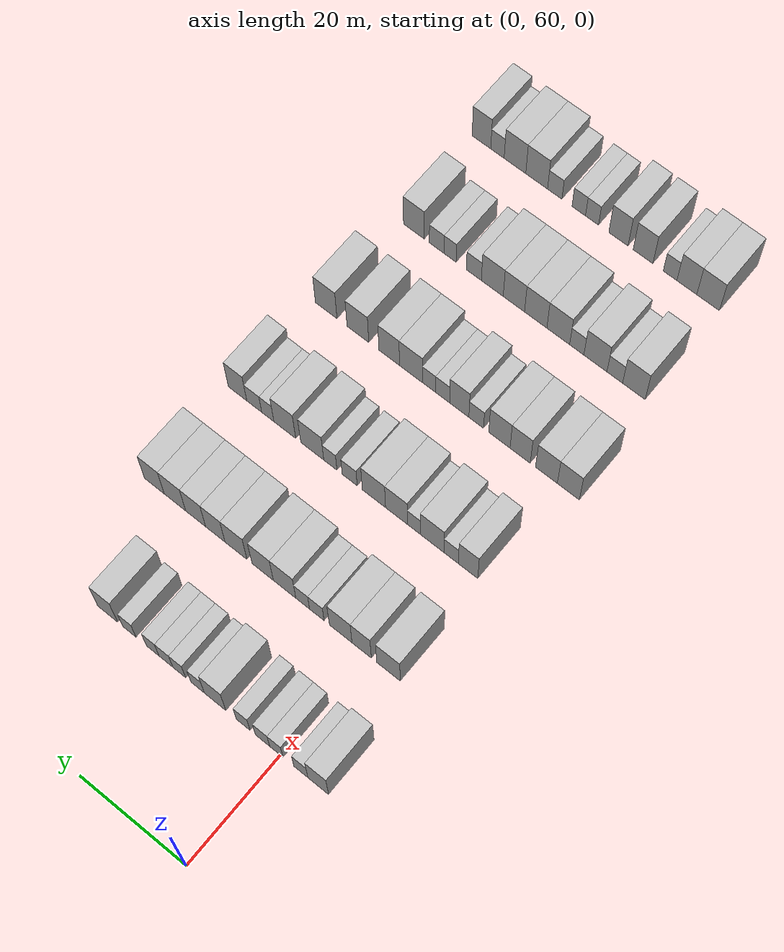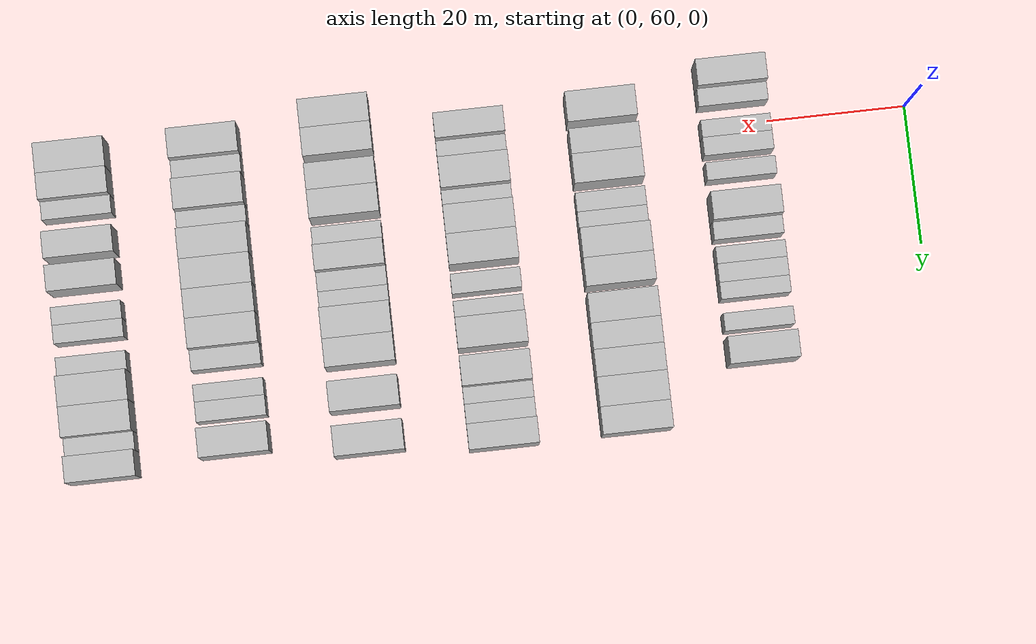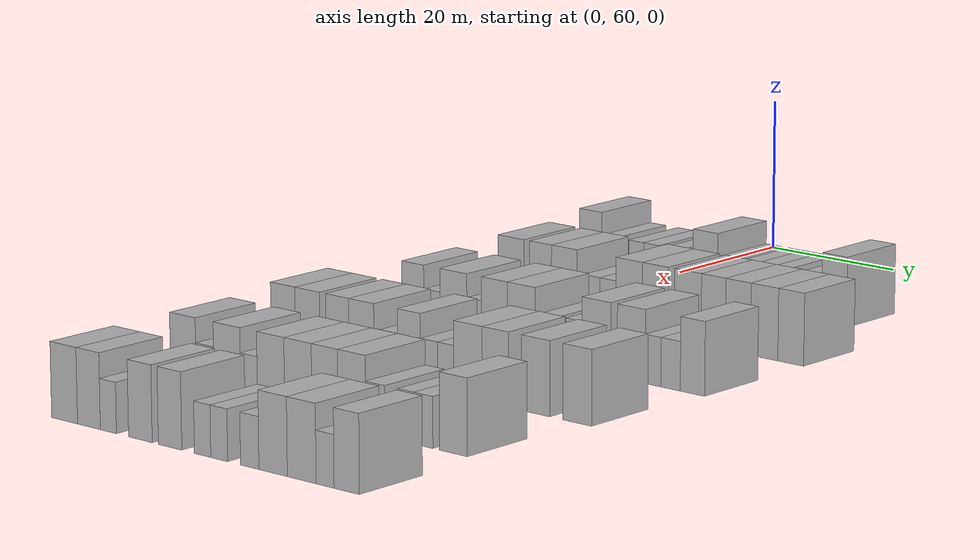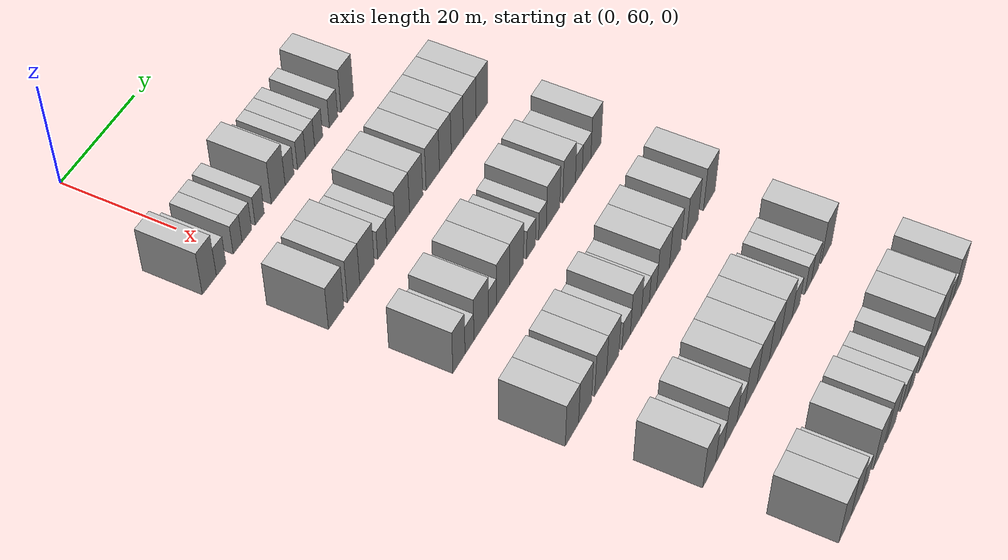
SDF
<sdf version="1.6">
 <world name="default">
  <model name="building_101">
   <static>1</static>
   <pose>25.0000 53.0831 0 0.000000 0.000000 0.000000</pose>
   <link name="link">
    <pose>0 0 4.50 0 0 0</pose>
    <collision name="collision"><geometry><box><size>10.0000 3.7959 9.0000</size></box></geometry></collision>
    <visual name="visual">
     <cast_shadows>0</cast_shadows>
     <geometry><box><size>10.0000 3.7959 9.0000</size></box></geometry>
     <material>
      <script>
       <uri>model://HANNAS_wall/materials/scripts</uri>
       <uri>model://HANNAS_wall/materials/textures</uri>
       <name>vrc/HANNAS_wall</name>
      </script>
     </material>
    </visual>
   </link>
  </model>
  <model name="building_102">
   <static>1</static>
   <pose>25.0000 56.2767 0 0.000000 0.000000 0.000000</pose>
   <link name="link">
    <pose>0 0 3.00 0 0 0</pose>
    <collision name="collision"><geometry><box><size>10.0000 2.5913 6.0000</size></box></geometry></collision>
    <visual name="visual">
     <cast_shadows>0</cast_shadows>
     <geometry><box><size>10.0000 2.5913 6.0000</size></box></geometry>
     <material>
      <script>
       <uri>model://HANNAS_wall/materials/scripts</uri>
       <uri>model://HANNAS_wall/materials/textures</uri>
       <name>vrc/HANNAS_wall</name>
      </script>
     </material>
    </visual>
   </link>
  </model>
  <model name="building_103">
   <static>1</static>
   <pose>25.0000 60.8071 0 0.000000 0.000000 0.000000</pose>
   <link name="link">
    <pose>0 0 3.00 0 0 0</pose>
    <collision name="collision"><geometry><box><size>10.0000 2.4694 6.0000</size></box></geometry></collision>
    <visual name="visual">
     <cast_shadows>0</cast_shadows>
     <geometry><box><size>10.0000 2.4694 6.0000</size></box></geometry>
     <material>
      <script>
       <uri>model://HANNAS_wall/materials/scripts</uri>
       <uri>model://HANNAS_wall/materials/textures</uri>
       <name>vrc/HANNAS_wall</name>
      </script>
     </material>
    </visual>
   </link>
  </model>
  <model name="building_104">
   <static>1</static>
   <pose>25.0000 63.3766 0 0.000000 0.000000 0.000000</pose>
   <link name="link">
    <pose>0 0 3.00 0 0 0</pose>
    <collision name="collision"><geometry><box><size>10.0000 2.6698 6.0000</size></box></geometry></collision>
    <visual name="visual">
     <cast_shadows>0</cast_shadows>
     <geometry><box><size>10.0000 2.6698 6.0000</size></box></geometry>
     <material>
      <script>
       <uri>model://HANNAS_wall/materials/scripts</uri>
       <uri>model://HANNAS_wall/materials/textures</uri>
       <name>vrc/HANNAS_wall</name>
      </script>
     </material>
    </visual>
   </link>
  </model>
  <model name="building_105">
   <static>1</static>
   <pose>25.0000 66.9914 0 0.000000 0.000000 0.000000</pose>
   <link name="link">
    <pose>0 0 3.00 0 0 0</pose>
    <collision name="collision"><geometry><box><size>10.0000 2.5598 6.0000</size></box></geometry></collision>
    <visual name="visual">
     <cast_shadows>0</cast_shadows>
     <geometry><box><size>10.0000 2.5598 6.0000</size></box></geometry>
     <material>
      <script>
       <uri>model://HANNAS_wall/materials/scripts</uri>
       <uri>model://HANNAS_wall/materials/textures</uri>
       <name>vrc/HANNAS_wall</name>
      </script>
     </material>
    </visual>
   </link>
  </model>
  <model name="building_106">
   <static>1</static>
   <pose>25.0000 72.2853 0 0.000000 0.000000 0.000000</pose>
   <link name="link">
    <pose>0 0 4.50 0 0 0</pose>
    <collision name="collision"><geometry><box><size>10.0000 4.0279 9.0000</size></box></geometry></collision>
    <visual name="visual">
     <cast_shadows>0</cast_shadows>
     <geometry><box><size>10.0000 4.0279 9.0000</size></box></geometry>
     <material>
      <script>
       <uri>model://HANNAS_wall/materials/scripts</uri>
       <uri>model://HANNAS_wall/materials/textures</uri>
       <name>vrc/HANNAS_wall</name>
      </script>
     </material>
    </visual>
   </link>
  </model>
  <model name="building_107">
   <static>1</static>
   <pose>25.0000 75.5898 0 0.000000 0.000000 0.000000</pose>
   <link name="link">
    <pose>0 0 3.00 0 0 0</pose>
    <collision name="collision"><geometry><box><size>10.0000 2.5812 6.0000</size></box></geometry></collision>
    <visual name="visual">
     <cast_shadows>0</cast_shadows>
     <geometry><box><size>10.0000 2.5812 6.0000</size></box></geometry>
     <material>
      <script>
       <uri>model://HANNAS_wall/materials/scripts</uri>
       <uri>model://HANNAS_wall/materials/textures</uri>
       <name>vrc/HANNAS_wall</name>
      </script>
     </material>
    </visual>
   </link>
  </model>
  <model name="building_108">
   <static>1</static>
   <pose>25.0000 79.0958 0 0.000000 0.000000 0.000000</pose>
   <link name="link">
    <pose>0 0 3.00 0 0 0</pose>
    <collision name="collision"><geometry><box><size>10.0000 2.4307 6.0000</size></box></geometry></collision>
    <visual name="visual">
     <cast_shadows>0</cast_shadows>
     <geometry><box><size>10.0000 2.4307 6.0000</size></box></geometry>
     <material>
      <script>
       <uri>model://HANNAS_wall/materials/scripts</uri>
       <uri>model://HANNAS_wall/materials/textures</uri>
       <name>vrc/HANNAS_wall</name>
      </script>
     </material>
    </visual>
   </link>
  </model>
  <model name="building_109">
   <static>1</static>
   <pose>25.0000 81.6455 0 0.000000 0.000000 0.000000</pose>
   <link name="link">
    <pose>0 0 3.00 0 0 0</pose>
    <collision name="collision"><geometry><box><size>10.0000 2.6686 6.0000</size></box></geometry></collision>
    <visual name="visual">
     <cast_shadows>0</cast_shadows>
     <geometry><box><size>10.0000 2.6686 6.0000</size></box></geometry>
     <material>
      <script>
       <uri>model://HANNAS_wall/materials/scripts</uri>
       <uri>model://HANNAS_wall/materials/textures</uri>
       <name>vrc/HANNAS_wall</name>
      </script>
     </material>
    </visual>
   </link>
  </model>
  <model name="building_110">
   <static>1</static>
   <pose>25.0000 84.2063 0 0.000000 0.000000 0.000000</pose>
   <link name="link">
    <pose>0 0 3.00 0 0 0</pose>
    <collision name="collision"><geometry><box><size>10.0000 2.4531 6.0000</size></box></geometry></collision>
    <visual name="visual">
     <cast_shadows>0</cast_shadows>
     <geometry><box><size>10.0000 2.4531 6.0000</size></box></geometry>
     <material>
      <script>
       <uri>model://HANNAS_wall/materials/scripts</uri>
       <uri>model://HANNAS_wall/materials/textures</uri>
       <name>vrc/HANNAS_wall</name>
      </script>
     </material>
    </visual>
   </link>
  </model>
  <model name="building_111">
   <static>1</static>
   <pose>25.0000 88.7154 0 0.000000 0.000000 0.000000</pose>
   <link name="link">
    <pose>0 0 3.00 0 0 0</pose>
    <collision name="collision"><geometry><box><size>10.0000 2.5651 6.0000</size></box></geometry></collision>
    <visual name="visual">
     <cast_shadows>0</cast_shadows>
     <geometry><box><size>10.0000 2.5651 6.0000</size></box></geometry>
     <material>
      <script>
       <uri>model://HANNAS_wall/materials/scripts</uri>
       <uri>model://HANNAS_wall/materials/textures</uri>
       <name>vrc/HANNAS_wall</name>
      </script>
     </material>
    </visual>
   </link>
  </model>
  <model name="building_112">
   <static>1</static>
   <pose>25.0000 92.9549 0 0.000000 0.000000 0.000000</pose>
   <link name="link">
    <pose>0 0 4.50 0 0 0</pose>
    <collision name="collision"><geometry><box><size>10.0000 3.9139 9.0000</size></box></geometry></collision>
    <visual name="visual">
     <cast_shadows>0</cast_shadows>
     <geometry><box><size>10.0000 3.9139 9.0000</size></box></geometry>
     <material>
      <script>
       <uri>model://HANNAS_wall/materials/scripts</uri>
       <uri>model://HANNAS_wall/materials/textures</uri>
       <name>vrc/HANNAS_wall</name>
      </script>
     </material>
    </visual>
   </link>
  </model>
  <model name="building_251">
   <static>1</static>
   <pose>44.0000 55.9585 0 0.000000 0.000000 0.000000</pose>
   <link name="link">
    <pose>0 0 4.50 0 0 0</pose>
    <collision name="collision"><geometry><box><size>10.0000 4.3735 9.0000</size></box></geometry></collision>
    <visual name="visual">
     <cast_shadows>0</cast_shadows>
     <geometry><box><size>10.0000 4.3735 9.0000</size></box></geometry>
     <material>
      <script>
       <uri>model://HANNAS_wall/materials/scripts</uri>
       <uri>model://HANNAS_wall/materials/textures</uri>
       <name>vrc/HANNAS_wall</name>
      </script>
     </material>
    </visual>
   </link>
  </model>
  <model name="building_252">
   <static>1</static>
   <pose>44.0000 60.9543 0 0.000000 0.000000 0.000000</pose>
   <link name="link">
    <pose>0 0 4.50 0 0 0</pose>
    <collision name="collision"><geometry><box><size>10.0000 3.6181 9.0000</size></box></geometry></collision>
    <visual name="visual">
     <cast_shadows>0</cast_shadows>
     <geometry><box><size>10.0000 3.6181 9.0000</size></box></geometry>
     <material>
      <script>
       <uri>model://HANNAS_wall/materials/scripts</uri>
       <uri>model://HANNAS_wall/materials/textures</uri>
       <name>vrc/HANNAS_wall</name>
      </script>
     </material>
    </visual>
   </link>
  </model>
  <model name="building_253">
   <static>1</static>
   <pose>44.0000 64.8880 0 0.000000 0.000000 0.000000</pose>
   <link name="link">
    <pose>0 0 4.50 0 0 0</pose>
    <collision name="collision"><geometry><box><size>10.0000 4.2494 9.0000</size></box></geometry></collision>
    <visual name="visual">
     <cast_shadows>0</cast_shadows>
     <geometry><box><size>10.0000 4.2494 9.0000</size></box></geometry>
     <material>
      <script>
       <uri>model://HANNAS_wall/materials/scripts</uri>
       <uri>model://HANNAS_wall/materials/textures</uri>
       <name>vrc/HANNAS_wall</name>
      </script>
     </material>
    </visual>
   </link>
  </model>
  <model name="building_254">
   <static>1</static>
   <pose>44.0000 69.3848 0 0.000000 0.000000 0.000000</pose>
   <link name="link">
    <pose>0 0 3.00 0 0 0</pose>
    <collision name="collision"><geometry><box><size>10.0000 2.7442 6.0000</size></box></geometry></collision>
    <visual name="visual">
     <cast_shadows>0</cast_shadows>
     <geometry><box><size>10.0000 2.7442 6.0000</size></box></geometry>
     <material>
      <script>
       <uri>model://HANNAS_wall/materials/scripts</uri>
       <uri>model://HANNAS_wall/materials/textures</uri>
       <name>vrc/HANNAS_wall</name>
      </script>
     </material>
    </visual>
   </link>
  </model>
  <model name="building_255">
   <static>1</static>
   <pose>44.0000 72.0666 0 0.000000 0.000000 0.000000</pose>
   <link name="link">
    <pose>0 0 3.00 0 0 0</pose>
    <collision name="collision"><geometry><box><size>10.0000 2.6193 6.0000</size></box></geometry></collision>
    <visual name="visual">
     <cast_shadows>0</cast_shadows>
     <geometry><box><size>10.0000 2.6193 6.0000</size></box></geometry>
     <material>
      <script>
       <uri>model://HANNAS_wall/materials/scripts</uri>
       <uri>model://HANNAS_wall/materials/textures</uri>
       <name>vrc/HANNAS_wall</name>
      </script>
     </material>
    </visual>
   </link>
  </model>
  <model name="building_256">
   <static>1</static>
   <pose>44.0000 75.5264 0 0.000000 0.000000 0.000000</pose>
   <link name="link">
    <pose>0 0 4.50 0 0 0</pose>
    <collision name="collision"><geometry><box><size>10.0000 4.3003 9.0000</size></box></geometry></collision>
    <visual name="visual">
     <cast_shadows>0</cast_shadows>
     <geometry><box><size>10.0000 4.3003 9.0000</size></box></geometry>
     <material>
      <script>
       <uri>model://HANNAS_wall/materials/scripts</uri>
       <uri>model://HANNAS_wall/materials/textures</uri>
       <name>vrc/HANNAS_wall</name>
      </script>
     </material>
    </visual>
   </link>
  </model>
  <model name="building_257">
   <static>1</static>
   <pose>44.0000 79.7203 0 0.000000 0.000000 0.000000</pose>
   <link name="link">
    <pose>0 0 4.50 0 0 0</pose>
    <collision name="collision"><geometry><box><size>10.0000 4.0875 9.0000</size></box></geometry></collision>
    <visual name="visual">
     <cast_shadows>0</cast_shadows>
     <geometry><box><size>10.0000 4.0875 9.0000</size></box></geometry>
     <material>
      <script>
       <uri>model://HANNAS_wall/materials/scripts</uri>
       <uri>model://HANNAS_wall/materials/textures</uri>
       <name>vrc/HANNAS_wall</name>
      </script>
     </material>
    </visual>
   </link>
  </model>
  <model name="building_258">
   <static>1</static>
   <pose>44.0000 84.8828 0 0.000000 0.000000 0.000000</pose>
   <link name="link">
    <pose>0 0 4.50 0 0 0</pose>
    <collision name="collision"><geometry><box><size>10.0000 4.2374 9.0000</size></box></geometry></collision>
    <visual name="visual">
     <cast_shadows>0</cast_shadows>
     <geometry><box><size>10.0000 4.2374 9.0000</size></box></geometry>
     <material>
      <script>
       <uri>model://HANNAS_wall/materials/scripts</uri>
       <uri>model://HANNAS_wall/materials/textures</uri>
       <name>vrc/HANNAS_wall</name>
      </script>
     </material>
    </visual>
   </link>
  </model>
  <model name="building_259">
   <static>1</static>
   <pose>44.0000 88.8914 0 0.000000 0.000000 0.000000</pose>
   <link name="link">
    <pose>0 0 4.50 0 0 0</pose>
    <collision name="collision"><geometry><box><size>10.0000 3.7797 9.0000</size></box></geometry></collision>
    <visual name="visual">
     <cast_shadows>0</cast_shadows>
     <geometry><box><size>10.0000 3.7797 9.0000</size></box></geometry>
     <material>
      <script>
       <uri>model://HANNAS_wall/materials/scripts</uri>
       <uri>model://HANNAS_wall/materials/textures</uri>
       <name>vrc/HANNAS_wall</name>
      </script>
     </material>
    </visual>
   </link>
  </model>
  <model name="building_260">
   <static>1</static>
   <pose>44.0000 92.7341 0 0.000000 0.000000 0.000000</pose>
   <link name="link">
    <pose>0 0 4.50 0 0 0</pose>
    <collision name="collision"><geometry><box><size>10.0000 3.9059 9.0000</size></box></geometry></collision>
    <visual name="visual">
     <cast_shadows>0</cast_shadows>
     <geometry><box><size>10.0000 3.9059 9.0000</size></box></geometry>
     <material>
      <script>
       <uri>model://HANNAS_wall/materials/scripts</uri>
       <uri>model://HANNAS_wall/materials/textures</uri>
       <name>vrc/HANNAS_wall</name>
      </script>
     </material>
    </visual>
   </link>
  </model>
  <model name="building_261">
   <static>1</static>
   <pose>44.0000 96.8026 0 0.000000 0.000000 0.000000</pose>
   <link name="link">
    <pose>0 0 4.50 0 0 0</pose>
    <collision name="collision"><geometry><box><size>10.0000 4.2311 9.0000</size></box></geometry></collision>
    <visual name="visual">
     <cast_shadows>0</cast_shadows>
     <geometry><box><size>10.0000 4.2311 9.0000</size></box></geometry>
     <material>
      <script>
       <uri>model://HANNAS_wall/materials/scripts</uri>
       <uri>model://HANNAS_wall/materials/textures</uri>
       <name>vrc/HANNAS_wall</name>
      </script>
     </material>
    </visual>
   </link>
  </model>
  <model name="building_262">
   <static>1</static>
   <pose>44.0000 100.8817 0 0.000000 0.000000 0.000000</pose>
   <link name="link">
    <pose>0 0 4.50 0 0 0</pose>
    <collision name="collision"><geometry><box><size>10.0000 3.9271 9.0000</size></box></geometry></collision>
    <visual name="visual">
     <cast_shadows>0</cast_shadows>
     <geometry><box><size>10.0000 3.9271 9.0000</size></box></geometry>
     <material>
      <script>
       <uri>model://HANNAS_wall/materials/scripts</uri>
       <uri>model://HANNAS_wall/materials/textures</uri>
       <name>vrc/HANNAS_wall</name>
      </script>
     </material>
    </visual>
   </link>
  </model>
  <model name="building_428">
   <static>1</static>
   <pose>63.0000 56.5885 0 0.000000 0.000000 0.000000</pose>
   <link name="link">
    <pose>0 0 4.50 0 0 0</pose>
    <collision name="collision"><geometry><box><size>10.0000 3.6494 9.0000</size></box></geometry></collision>
    <visual name="visual">
     <cast_shadows>0</cast_shadows>
     <geometry><box><size>10.0000 3.6494 9.0000</size></box></geometry>
     <material>
      <script>
       <uri>model://HANNAS_wall/materials/scripts</uri>
       <uri>model://HANNAS_wall/materials/textures</uri>
       <name>vrc/HANNAS_wall</name>
      </script>
     </material>
    </visual>
   </link>
  </model>
  <model name="building_429">
   <static>1</static>
   <pose>63.0000 59.7554 0 0.000000 0.000000 0.000000</pose>
   <link name="link">
    <pose>0 0 3.00 0 0 0</pose>
    <collision name="collision"><geometry><box><size>10.0000 2.6846 6.0000</size></box></geometry></collision>
    <visual name="visual">
     <cast_shadows>0</cast_shadows>
     <geometry><box><size>10.0000 2.6846 6.0000</size></box></geometry>
     <material>
      <script>
       <uri>model://HANNAS_wall/materials/scripts</uri>
       <uri>model://HANNAS_wall/materials/textures</uri>
       <name>vrc/HANNAS_wall</name>
      </script>
     </material>
    </visual>
   </link>
  </model>
  <model name="building_430">
   <static>1</static>
   <pose>63.0000 63.3325 0 0.000000 0.000000 0.000000</pose>
   <link name="link">
    <pose>0 0 4.50 0 0 0</pose>
    <collision name="collision"><geometry><box><size>10.0000 4.4696 9.0000</size></box></geometry></collision>
    <visual name="visual">
     <cast_shadows>0</cast_shadows>
     <geometry><box><size>10.0000 4.4696 9.0000</size></box></geometry>
     <material>
      <script>
       <uri>model://HANNAS_wall/materials/scripts</uri>
       <uri>model://HANNAS_wall/materials/textures</uri>
       <name>vrc/HANNAS_wall</name>
      </script>
     </material>
    </visual>
   </link>
  </model>
  <model name="building_431">
   <static>1</static>
   <pose>63.0000 66.7752 0 0.000000 0.000000 0.000000</pose>
   <link name="link">
    <pose>0 0 3.00 0 0 0</pose>
    <collision name="collision"><geometry><box><size>10.0000 2.4157 6.0000</size></box></geometry></collision>
    <visual name="visual">
     <cast_shadows>0</cast_shadows>
     <geometry><box><size>10.0000 2.4157 6.0000</size></box></geometry>
     <material>
      <script>
       <uri>model://HANNAS_wall/materials/scripts</uri>
       <uri>model://HANNAS_wall/materials/textures</uri>
       <name>vrc/HANNAS_wall</name>
      </script>
     </material>
    </visual>
   </link>
  </model>
  <model name="building_432">
   <static>1</static>
   <pose>63.0000 70.0774 0 0.000000 0.000000 0.000000</pose>
   <link name="link">
    <pose>0 0 4.50 0 0 0</pose>
    <collision name="collision"><geometry><box><size>10.0000 4.1885 9.0000</size></box></geometry></collision>
    <visual name="visual">
     <cast_shadows>0</cast_shadows>
     <geometry><box><size>10.0000 4.1885 9.0000</size></box></geometry>
     <material>
      <script>
       <uri>model://HANNAS_wall/materials/scripts</uri>
       <uri>model://HANNAS_wall/materials/textures</uri>
       <name>vrc/HANNAS_wall</name>
      </script>
     </material>
    </visual>
   </link>
  </model>
  <model name="building_433">
   <static>1</static>
   <pose>63.0000 74.3974 0 0.000000 0.000000 0.000000</pose>
   <link name="link">
    <pose>0 0 4.50 0 0 0</pose>
    <collision name="collision"><geometry><box><size>10.0000 4.4515 9.0000</size></box></geometry></collision>
    <visual name="visual">
     <cast_shadows>0</cast_shadows>
     <geometry><box><size>10.0000 4.4515 9.0000</size></box></geometry>
     <material>
      <script>
       <uri>model://HANNAS_wall/materials/scripts</uri>
       <uri>model://HANNAS_wall/materials/textures</uri>
       <name>vrc/HANNAS_wall</name>
      </script>
     </material>
    </visual>
   </link>
  </model>
  <model name="building_434">
   <static>1</static>
   <pose>63.0000 79.0762 0 0.000000 0.000000 0.000000</pose>
   <link name="link">
    <pose>0 0 3.00 0 0 0</pose>
    <collision name="collision"><geometry><box><size>10.0000 2.9061 6.0000</size></box></geometry></collision>
    <visual name="visual">
     <cast_shadows>0</cast_shadows>
     <geometry><box><size>10.0000 2.9061 6.0000</size></box></geometry>
     <material>
      <script>
       <uri>model://HANNAS_wall/materials/scripts</uri>
       <uri>model://HANNAS_wall/materials/textures</uri>
       <name>vrc/HANNAS_wall</name>
      </script>
     </material>
    </visual>
   </link>
  </model>
  <model name="building_435">
   <static>1</static>
   <pose>63.0000 82.8114 0 0.000000 0.000000 0.000000</pose>
   <link name="link">
    <pose>0 0 3.00 0 0 0</pose>
    <collision name="collision"><geometry><box><size>10.0000 2.5645 6.0000</size></box></geometry></collision>
    <visual name="visual">
     <cast_shadows>0</cast_shadows>
     <geometry><box><size>10.0000 2.5645 6.0000</size></box></geometry>
     <material>
      <script>
       <uri>model://HANNAS_wall/materials/scripts</uri>
       <uri>model://HANNAS_wall/materials/textures</uri>
       <name>vrc/HANNAS_wall</name>
      </script>
     </material>
    </visual>
   </link>
  </model>
  <model name="building_436">
   <static>1</static>
   <pose>63.0000 86.3375 0 0.000000 0.000000 0.000000</pose>
   <link name="link">
    <pose>0 0 4.50 0 0 0</pose>
    <collision name="collision"><geometry><box><size>10.0000 4.4877 9.0000</size></box></geometry></collision>
    <visual name="visual">
     <cast_shadows>0</cast_shadows>
     <geometry><box><size>10.0000 4.4877 9.0000</size></box></geometry>
     <material>
      <script>
       <uri>model://HANNAS_wall/materials/scripts</uri>
       <uri>model://HANNAS_wall/materials/textures</uri>
       <name>vrc/HANNAS_wall</name>
      </script>
     </material>
    </visual>
   </link>
  </model>
  <model name="building_437">
   <static>1</static>
   <pose>63.0000 91.7300 0 0.000000 0.000000 0.000000</pose>
   <link name="link">
    <pose>0 0 4.50 0 0 0</pose>
    <collision name="collision"><geometry><box><size>10.0000 4.2971 9.0000</size></box></geometry></collision>
    <visual name="visual">
     <cast_shadows>0</cast_shadows>
     <geometry><box><size>10.0000 4.2971 9.0000</size></box></geometry>
     <material>
      <script>
       <uri>model://HANNAS_wall/materials/scripts</uri>
       <uri>model://HANNAS_wall/materials/textures</uri>
       <name>vrc/HANNAS_wall</name>
      </script>
     </material>
    </visual>
   </link>
  </model>
  <model name="building_438">
   <static>1</static>
   <pose>63.0000 95.0815 0 0.000000 0.000000 0.000000</pose>
   <link name="link">
    <pose>0 0 3.00 0 0 0</pose>
    <collision name="collision"><geometry><box><size>10.0000 2.4059 6.0000</size></box></geometry></collision>
    <visual name="visual">
     <cast_shadows>0</cast_shadows>
     <geometry><box><size>10.0000 2.4059 6.0000</size></box></geometry>
     <material>
      <script>
       <uri>model://HANNAS_wall/materials/scripts</uri>
       <uri>model://HANNAS_wall/materials/textures</uri>
       <name>vrc/HANNAS_wall</name>
      </script>
     </material>
    </visual>
   </link>
  </model>
  <model name="building_439">
   <static>1</static>
   <pose>63.0000 97.7679 0 0.000000 0.000000 0.000000</pose>
   <link name="link">
    <pose>0 0 3.00 0 0 0</pose>
    <collision name="collision"><geometry><box><size>10.0000 2.9670 6.0000</size></box></geometry></collision>
    <visual name="visual">
     <cast_shadows>0</cast_shadows>
     <geometry><box><size>10.0000 2.9670 6.0000</size></box></geometry>
     <material>
      <script>
       <uri>model://HANNAS_wall/materials/scripts</uri>
       <uri>model://HANNAS_wall/materials/textures</uri>
       <name>vrc/HANNAS_wall</name>
      </script>
     </material>
    </visual>
   </link>
  </model>
  <model name="building_440">
   <static>1</static>
   <pose>63.0000 101.0882 0 0.000000 0.000000 0.000000</pose>
   <link name="link">
    <pose>0 0 4.50 0 0 0</pose>
    <collision name="collision"><geometry><box><size>10.0000 3.6736 9.0000</size></box></geometry></collision>
    <visual name="visual">
     <cast_shadows>0</cast_shadows>
     <geometry><box><size>10.0000 3.6736 9.0000</size></box></geometry>
     <material>
      <script>
       <uri>model://HANNAS_wall/materials/scripts</uri>
       <uri>model://HANNAS_wall/materials/textures</uri>
       <name>vrc/HANNAS_wall</name>
      </script>
     </material>
    </visual>
   </link>
  </model>
  <model name="building_594">
   <static>1</static>
   <pose>82.0000 52.7827 0 0.000000 0.000000 0.000000</pose>
   <link name="link">
    <pose>0 0 4.50 0 0 0</pose>
    <collision name="collision"><geometry><box><size>10.0000 4.1237 9.0000</size></box></geometry></collision>
    <visual name="visual">
     <cast_shadows>0</cast_shadows>
     <geometry><box><size>10.0000 4.1237 9.0000</size></box></geometry>
     <material>
      <script>
       <uri>model://HANNAS_wall/materials/scripts</uri>
       <uri>model://HANNAS_wall/materials/textures</uri>
       <name>vrc/HANNAS_wall</name>
      </script>
     </material>
    </visual>
   </link>
  </model>
  <model name="building_595">
   <static>1</static>
   <pose>82.0000 56.8955 0 0.000000 0.000000 0.000000</pose>
   <link name="link">
    <pose>0 0 4.50 0 0 0</pose>
    <collision name="collision"><geometry><box><size>10.0000 4.1020 9.0000</size></box></geometry></collision>
    <visual name="visual">
     <cast_shadows>0</cast_shadows>
     <geometry><box><size>10.0000 4.1020 9.0000</size></box></geometry>
     <material>
      <script>
       <uri>model://HANNAS_wall/materials/scripts</uri>
       <uri>model://HANNAS_wall/materials/textures</uri>
       <name>vrc/HANNAS_wall</name>
      </script>
     </material>
    </visual>
   </link>
  </model>
  <model name="building_596">
   <static>1</static>
   <pose>82.0000 61.8574 0 0.000000 0.000000 0.000000</pose>
   <link name="link">
    <pose>0 0 4.50 0 0 0</pose>
    <collision name="collision"><geometry><box><size>10.0000 3.8217 9.0000</size></box></geometry></collision>
    <visual name="visual">
     <cast_shadows>0</cast_shadows>
     <geometry><box><size>10.0000 3.8217 9.0000</size></box></geometry>
     <material>
      <script>
       <uri>model://HANNAS_wall/materials/scripts</uri>
       <uri>model://HANNAS_wall/materials/textures</uri>
       <name>vrc/HANNAS_wall</name>
      </script>
     </material>
    </visual>
   </link>
  </model>
  <model name="building_597">
   <static>1</static>
   <pose>82.0000 65.7996 0 0.000000 0.000000 0.000000</pose>
   <link name="link">
    <pose>0 0 4.50 0 0 0</pose>
    <collision name="collision"><geometry><box><size>10.0000 4.0628 9.0000</size></box></geometry></collision>
    <visual name="visual">
     <cast_shadows>0</cast_shadows>
     <geometry><box><size>10.0000 4.0628 9.0000</size></box></geometry>
     <material>
      <script>
       <uri>model://HANNAS_wall/materials/scripts</uri>
       <uri>model://HANNAS_wall/materials/textures</uri>
       <name>vrc/HANNAS_wall</name>
      </script>
     </material>
    </visual>
   </link>
  </model>
  <model name="building_598">
   <static>1</static>
   <pose>82.0000 70.2352 0 0.000000 0.000000 0.000000</pose>
   <link name="link">
    <pose>0 0 3.00 0 0 0</pose>
    <collision name="collision"><geometry><box><size>10.0000 2.8083 6.0000</size></box></geometry></collision>
    <visual name="visual">
     <cast_shadows>0</cast_shadows>
     <geometry><box><size>10.0000 2.8083 6.0000</size></box></geometry>
     <material>
      <script>
       <uri>model://HANNAS_wall/materials/scripts</uri>
       <uri>model://HANNAS_wall/materials/textures</uri>
       <name>vrc/HANNAS_wall</name>
      </script>
     </material>
    </visual>
   </link>
  </model>
  <model name="building_599">
   <static>1</static>
   <pose>82.0000 73.4922 0 0.000000 0.000000 0.000000</pose>
   <link name="link">
    <pose>0 0 4.50 0 0 0</pose>
    <collision name="collision"><geometry><box><size>10.0000 3.7058 9.0000</size></box></geometry></collision>
    <visual name="visual">
     <cast_shadows>0</cast_shadows>
     <geometry><box><size>10.0000 3.7058 9.0000</size></box></geometry>
     <material>
      <script>
       <uri>model://HANNAS_wall/materials/scripts</uri>
       <uri>model://HANNAS_wall/materials/textures</uri>
       <name>vrc/HANNAS_wall</name>
      </script>
     </material>
    </visual>
   </link>
  </model>
  <model name="building_600">
   <static>1</static>
   <pose>82.0000 76.7209 0 0.000000 0.000000 0.000000</pose>
   <link name="link">
    <pose>0 0 3.00 0 0 0</pose>
    <collision name="collision"><geometry><box><size>10.0000 2.7516 6.0000</size></box></geometry></collision>
    <visual name="visual">
     <cast_shadows>0</cast_shadows>
     <geometry><box><size>10.0000 2.7516 6.0000</size></box></geometry>
     <material>
      <script>
       <uri>model://HANNAS_wall/materials/scripts</uri>
       <uri>model://HANNAS_wall/materials/textures</uri>
       <name>vrc/HANNAS_wall</name>
      </script>
     </material>
    </visual>
   </link>
  </model>
  <model name="building_601">
   <static>1</static>
   <pose>82.0000 79.3577 0 0.000000 0.000000 0.000000</pose>
   <link name="link">
    <pose>0 0 3.00 0 0 0</pose>
    <collision name="collision"><geometry><box><size>10.0000 2.5218 6.0000</size></box></geometry></collision>
    <visual name="visual">
     <cast_shadows>0</cast_shadows>
     <geometry><box><size>10.0000 2.5218 6.0000</size></box></geometry>
     <material>
      <script>
       <uri>model://HANNAS_wall/materials/scripts</uri>
       <uri>model://HANNAS_wall/materials/textures</uri>
       <name>vrc/HANNAS_wall</name>
      </script>
     </material>
    </visual>
   </link>
  </model>
  <model name="building_602">
   <static>1</static>
   <pose>82.0000 82.8549 0 0.000000 0.000000 0.000000</pose>
   <link name="link">
    <pose>0 0 4.50 0 0 0</pose>
    <collision name="collision"><geometry><box><size>10.0000 4.4726 9.0000</size></box></geometry></collision>
    <visual name="visual">
     <cast_shadows>0</cast_shadows>
     <geometry><box><size>10.0000 4.4726 9.0000</size></box></geometry>
     <material>
      <script>
       <uri>model://HANNAS_wall/materials/scripts</uri>
       <uri>model://HANNAS_wall/materials/textures</uri>
       <name>vrc/HANNAS_wall</name>
      </script>
     </material>
    </visual>
   </link>
  </model>
  <model name="building_603">
   <static>1</static>
   <pose>82.0000 87.1201 0 0.000000 0.000000 0.000000</pose>
   <link name="link">
    <pose>0 0 4.50 0 0 0</pose>
    <collision name="collision"><geometry><box><size>10.0000 4.0580 9.0000</size></box></geometry></collision>
    <visual name="visual">
     <cast_shadows>0</cast_shadows>
     <geometry><box><size>10.0000 4.0580 9.0000</size></box></geometry>
     <material>
      <script>
       <uri>model://HANNAS_wall/materials/scripts</uri>
       <uri>model://HANNAS_wall/materials/textures</uri>
       <name>vrc/HANNAS_wall</name>
      </script>
     </material>
    </visual>
   </link>
  </model>
  <model name="building_604">
   <static>1</static>
   <pose>82.0000 93.3051 0 0.000000 0.000000 0.000000</pose>
   <link name="link">
    <pose>0 0 4.50 0 0 0</pose>
    <collision name="collision"><geometry><box><size>10.0000 4.3120 9.0000</size></box></geometry></collision>
    <visual name="visual">
     <cast_shadows>0</cast_shadows>
     <geometry><box><size>10.0000 4.3120 9.0000</size></box></geometry>
     <material>
      <script>
       <uri>model://HANNAS_wall/materials/scripts</uri>
       <uri>model://HANNAS_wall/materials/textures</uri>
       <name>vrc/HANNAS_wall</name>
      </script>
     </material>
    </visual>
   </link>
  </model>
  <model name="building_605">
   <static>1</static>
   <pose>82.0000 99.6164 0 0.000000 0.000000 0.000000</pose>
   <link name="link">
    <pose>0 0 4.50 0 0 0</pose>
    <collision name="collision"><geometry><box><size>10.0000 4.3107 9.0000</size></box></geometry></collision>
    <visual name="visual">
     <cast_shadows>0</cast_shadows>
     <geometry><box><size>10.0000 4.3107 9.0000</size></box></geometry>
     <material>
      <script>
       <uri>model://HANNAS_wall/materials/scripts</uri>
       <uri>model://HANNAS_wall/materials/textures</uri>
       <name>vrc/HANNAS_wall</name>
      </script>
     </material>
    </visual>
   </link>
  </model>
  <model name="building_772">
   <static>1</static>
   <pose>101.0000 54.9711 0 0.000000 0.000000 0.000000</pose>
   <link name="link">
    <pose>0 0 4.50 0 0 0</pose>
    <collision name="collision"><geometry><box><size>10.0000 4.2649 9.0000</size></box></geometry></collision>
    <visual name="visual">
     <cast_shadows>0</cast_shadows>
     <geometry><box><size>10.0000 4.2649 9.0000</size></box></geometry>
     <material>
      <script>
       <uri>model://HANNAS_wall/materials/scripts</uri>
       <uri>model://HANNAS_wall/materials/textures</uri>
       <name>vrc/HANNAS_wall</name>
      </script>
     </material>
    </visual>
   </link>
  </model>
  <model name="building_773">
   <static>1</static>
   <pose>101.0000 58.5860 0 0.000000 0.000000 0.000000</pose>
   <link name="link">
    <pose>0 0 3.00 0 0 0</pose>
    <collision name="collision"><geometry><box><size>10.0000 2.9649 6.0000</size></box></geometry></collision>
    <visual name="visual">
     <cast_shadows>0</cast_shadows>
     <geometry><box><size>10.0000 2.9649 6.0000</size></box></geometry>
     <material>
      <script>
       <uri>model://HANNAS_wall/materials/scripts</uri>
       <uri>model://HANNAS_wall/materials/textures</uri>
       <name>vrc/HANNAS_wall</name>
      </script>
     </material>
    </visual>
   </link>
  </model>
  <model name="building_774">
   <static>1</static>
   <pose>101.0000 62.2700 0 0.000000 0.000000 0.000000</pose>
   <link name="link">
    <pose>0 0 4.50 0 0 0</pose>
    <collision name="collision"><geometry><box><size>10.0000 4.4031 9.0000</size></box></geometry></collision>
    <visual name="visual">
     <cast_shadows>0</cast_shadows>
     <geometry><box><size>10.0000 4.4031 9.0000</size></box></geometry>
     <material>
      <script>
       <uri>model://HANNAS_wall/materials/scripts</uri>
       <uri>model://HANNAS_wall/materials/textures</uri>
       <name>vrc/HANNAS_wall</name>
      </script>
     </material>
    </visual>
   </link>
  </model>
  <model name="building_775">
   <static>1</static>
   <pose>101.0000 65.8360 0 0.000000 0.000000 0.000000</pose>
   <link name="link">
    <pose>0 0 3.00 0 0 0</pose>
    <collision name="collision"><geometry><box><size>10.0000 2.7289 6.0000</size></box></geometry></collision>
    <visual name="visual">
     <cast_shadows>0</cast_shadows>
     <geometry><box><size>10.0000 2.7289 6.0000</size></box></geometry>
     <material>
      <script>
       <uri>model://HANNAS_wall/materials/scripts</uri>
       <uri>model://HANNAS_wall/materials/textures</uri>
       <name>vrc/HANNAS_wall</name>
      </script>
     </material>
    </visual>
   </link>
  </model>
  <model name="building_776">
   <static>1</static>
   <pose>101.0000 69.3975 0 0.000000 0.000000 0.000000</pose>
   <link name="link">
    <pose>0 0 4.50 0 0 0</pose>
    <collision name="collision"><geometry><box><size>10.0000 4.3941 9.0000</size></box></geometry></collision>
    <visual name="visual">
     <cast_shadows>0</cast_shadows>
     <geometry><box><size>10.0000 4.3941 9.0000</size></box></geometry>
     <material>
      <script>
       <uri>model://HANNAS_wall/materials/scripts</uri>
       <uri>model://HANNAS_wall/materials/textures</uri>
       <name>vrc/HANNAS_wall</name>
      </script>
     </material>
    </visual>
   </link>
  </model>
  <model name="building_777">
   <static>1</static>
   <pose>101.0000 73.7633 0 0.000000 0.000000 0.000000</pose>
   <link name="link">
    <pose>0 0 4.50 0 0 0</pose>
    <collision name="collision"><geometry><box><size>10.0000 4.3375 9.0000</size></box></geometry></collision>
    <visual name="visual">
     <cast_shadows>0</cast_shadows>
     <geometry><box><size>10.0000 4.3375 9.0000</size></box></geometry>
     <material>
      <script>
       <uri>model://HANNAS_wall/materials/scripts</uri>
       <uri>model://HANNAS_wall/materials/textures</uri>
       <name>vrc/HANNAS_wall</name>
      </script>
     </material>
    </visual>
   </link>
  </model>
  <model name="building_778">
   <static>1</static>
   <pose>101.0000 78.0102 0 0.000000 0.000000 0.000000</pose>
   <link name="link">
    <pose>0 0 4.50 0 0 0</pose>
    <collision name="collision"><geometry><box><size>10.0000 4.1563 9.0000</size></box></geometry></collision>
    <visual name="visual">
     <cast_shadows>0</cast_shadows>
     <geometry><box><size>10.0000 4.1563 9.0000</size></box></geometry>
     <material>
      <script>
       <uri>model://HANNAS_wall/materials/scripts</uri>
       <uri>model://HANNAS_wall/materials/textures</uri>
       <name>vrc/HANNAS_wall</name>
      </script>
     </material>
    </visual>
   </link>
  </model>
  <model name="building_779">
   <static>1</static>
   <pose>101.0000 82.2376 0 0.000000 0.000000 0.000000</pose>
   <link name="link">
    <pose>0 0 4.50 0 0 0</pose>
    <collision name="collision"><geometry><box><size>10.0000 4.2984 9.0000</size></box></geometry></collision>
    <visual name="visual">
     <cast_shadows>0</cast_shadows>
     <geometry><box><size>10.0000 4.2984 9.0000</size></box></geometry>
     <material>
      <script>
       <uri>model://HANNAS_wall/materials/scripts</uri>
       <uri>model://HANNAS_wall/materials/textures</uri>
       <name>vrc/HANNAS_wall</name>
      </script>
     </material>
    </visual>
   </link>
  </model>
  <model name="building_780">
   <static>1</static>
   <pose>101.0000 85.8697 0 0.000000 0.000000 0.000000</pose>
   <link name="link">
    <pose>0 0 3.00 0 0 0</pose>
    <collision name="collision"><geometry><box><size>10.0000 2.9658 6.0000</size></box></geometry></collision>
    <visual name="visual">
     <cast_shadows>0</cast_shadows>
     <geometry><box><size>10.0000 2.9658 6.0000</size></box></geometry>
     <material>
      <script>
       <uri>model://HANNAS_wall/materials/scripts</uri>
       <uri>model://HANNAS_wall/materials/textures</uri>
       <name>vrc/HANNAS_wall</name>
      </script>
     </material>
    </visual>
   </link>
  </model>
  <model name="building_781">
   <static>1</static>
   <pose>101.0000 90.5766 0 0.000000 0.000000 0.000000</pose>
   <link name="link">
    <pose>0 0 3.00 0 0 0</pose>
    <collision name="collision"><geometry><box><size>10.0000 2.4479 6.0000</size></box></geometry></collision>
    <visual name="visual">
     <cast_shadows>0</cast_shadows>
     <geometry><box><size>10.0000 2.4479 6.0000</size></box></geometry>
     <material>
      <script>
       <uri>model://HANNAS_wall/materials/scripts</uri>
       <uri>model://HANNAS_wall/materials/textures</uri>
       <name>vrc/HANNAS_wall</name>
      </script>
     </material>
    </visual>
   </link>
  </model>
  <model name="building_782">
   <static>1</static>
   <pose>101.0000 93.2462 0 0.000000 0.000000 0.000000</pose>
   <link name="link">
    <pose>0 0 3.00 0 0 0</pose>
    <collision name="collision"><geometry><box><size>10.0000 2.8913 6.0000</size></box></geometry></collision>
    <visual name="visual">
     <cast_shadows>0</cast_shadows>
     <geometry><box><size>10.0000 2.8913 6.0000</size></box></geometry>
     <material>
      <script>
       <uri>model://HANNAS_wall/materials/scripts</uri>
       <uri>model://HANNAS_wall/materials/textures</uri>
       <name>vrc/HANNAS_wall</name>
      </script>
     </material>
    </visual>
   </link>
  </model>
  <model name="building_783">
   <static>1</static>
   <pose>101.0000 97.7823 0 0.000000 0.000000 0.000000</pose>
   <link name="link">
    <pose>0 0 4.50 0 0 0</pose>
    <collision name="collision"><geometry><box><size>10.0000 4.1807 9.0000</size></box></geometry></collision>
    <visual name="visual">
     <cast_shadows>0</cast_shadows>
     <geometry><box><size>10.0000 4.1807 9.0000</size></box></geometry>
     <material>
      <script>
       <uri>model://HANNAS_wall/materials/scripts</uri>
       <uri>model://HANNAS_wall/materials/textures</uri>
       <name>vrc/HANNAS_wall</name>
      </script>
     </material>
    </visual>
   </link>
  </model>
  <model name="building_941">
   <static>1</static>
   <pose>120.0000 55.0396 0 0.000000 0.000000 0.000000</pose>
   <link name="link">
    <pose>0 0 4.50 0 0 0</pose>
    <collision name="collision"><geometry><box><size>10.0000 4.3175 9.0000</size></box></geometry></collision>
    <visual name="visual">
     <cast_shadows>0</cast_shadows>
     <geometry><box><size>10.0000 4.3175 9.0000</size></box></geometry>
     <material>
      <script>
       <uri>model://HANNAS_wall/materials/scripts</uri>
       <uri>model://HANNAS_wall/materials/textures</uri>
       <name>vrc/HANNAS_wall</name>
      </script>
     </material>
    </visual>
   </link>
  </model>
  <model name="building_942">
   <static>1</static>
   <pose>120.0000 59.0931 0 0.000000 0.000000 0.000000</pose>
   <link name="link">
    <pose>0 0 4.50 0 0 0</pose>
    <collision name="collision"><geometry><box><size>10.0000 3.7893 9.0000</size></box></geometry></collision>
    <visual name="visual">
     <cast_shadows>0</cast_shadows>
     <geometry><box><size>10.0000 3.7893 9.0000</size></box></geometry>
     <material>
      <script>
       <uri>model://HANNAS_wall/materials/scripts</uri>
       <uri>model://HANNAS_wall/materials/textures</uri>
       <name>vrc/HANNAS_wall</name>
      </script>
     </material>
    </visual>
   </link>
  </model>
  <model name="building_943">
   <static>1</static>
   <pose>120.0000 62.2990 0 0.000000 0.000000 0.000000</pose>
   <link name="link">
    <pose>0 0 3.00 0 0 0</pose>
    <collision name="collision"><geometry><box><size>10.0000 2.6226 6.0000</size></box></geometry></collision>
    <visual name="visual">
     <cast_shadows>0</cast_shadows>
     <geometry><box><size>10.0000 2.6226 6.0000</size></box></geometry>
     <material>
      <script>
       <uri>model://HANNAS_wall/materials/scripts</uri>
       <uri>model://HANNAS_wall/materials/textures</uri>
       <name>vrc/HANNAS_wall</name>
      </script>
     </material>
    </visual>
   </link>
  </model>
  <model name="building_944">
   <static>1</static>
   <pose>120.0000 67.5192 0 0.000000 0.000000 0.000000</pose>
   <link name="link">
    <pose>0 0 4.50 0 0 0</pose>
    <collision name="collision"><geometry><box><size>10.0000 3.8177 9.0000</size></box></geometry></collision>
    <visual name="visual">
     <cast_shadows>0</cast_shadows>
     <geometry><box><size>10.0000 3.8177 9.0000</size></box></geometry>
     <material>
      <script>
       <uri>model://HANNAS_wall/materials/scripts</uri>
       <uri>model://HANNAS_wall/materials/textures</uri>
       <name>vrc/HANNAS_wall</name>
      </script>
     </material>
    </visual>
   </link>
  </model>
  <model name="building_945">
   <static>1</static>
   <pose>120.0000 72.3013 0 0.000000 0.000000 0.000000</pose>
   <link name="link">
    <pose>0 0 4.50 0 0 0</pose>
    <collision name="collision"><geometry><box><size>10.0000 3.7467 9.0000</size></box></geometry></collision>
    <visual name="visual">
     <cast_shadows>0</cast_shadows>
     <geometry><box><size>10.0000 3.7467 9.0000</size></box></geometry>
     <material>
      <script>
       <uri>model://HANNAS_wall/materials/scripts</uri>
       <uri>model://HANNAS_wall/materials/textures</uri>
       <name>vrc/HANNAS_wall</name>
      </script>
     </material>
    </visual>
   </link>
  </model>
  <model name="building_946">
   <static>1</static>
   <pose>120.0000 77.4596 0 0.000000 0.000000 0.000000</pose>
   <link name="link">
    <pose>0 0 3.00 0 0 0</pose>
    <collision name="collision"><geometry><box><size>10.0000 2.5700 6.0000</size></box></geometry></collision>
    <visual name="visual">
     <cast_shadows>0</cast_shadows>
     <geometry><box><size>10.0000 2.5700 6.0000</size></box></geometry>
     <material>
      <script>
       <uri>model://HANNAS_wall/materials/scripts</uri>
       <uri>model://HANNAS_wall/materials/textures</uri>
       <name>vrc/HANNAS_wall</name>
      </script>
     </material>
    </visual>
   </link>
  </model>
  <model name="building_947">
   <static>1</static>
   <pose>120.0000 80.0707 0 0.000000 0.000000 0.000000</pose>
   <link name="link">
    <pose>0 0 3.00 0 0 0</pose>
    <collision name="collision"><geometry><box><size>10.0000 2.6521 6.0000</size></box></geometry></collision>
    <visual name="visual">
     <cast_shadows>0</cast_shadows>
     <geometry><box><size>10.0000 2.6521 6.0000</size></box></geometry>
     <material>
      <script>
       <uri>model://HANNAS_wall/materials/scripts</uri>
       <uri>model://HANNAS_wall/materials/textures</uri>
       <name>vrc/HANNAS_wall</name>
      </script>
     </material>
    </visual>
   </link>
  </model>
  <model name="building_948">
   <static>1</static>
   <pose>120.0000 84.8190 0 0.000000 0.000000 0.000000</pose>
   <link name="link">
    <pose>0 0 3.00 0 0 0</pose>
    <collision name="collision"><geometry><box><size>10.0000 2.8444 6.0000</size></box></geometry></collision>
    <visual name="visual">
     <cast_shadows>0</cast_shadows>
     <geometry><box><size>10.0000 2.8444 6.0000</size></box></geometry>
     <material>
      <script>
       <uri>model://HANNAS_wall/materials/scripts</uri>
       <uri>model://HANNAS_wall/materials/textures</uri>
       <name>vrc/HANNAS_wall</name>
      </script>
     </material>
    </visual>
   </link>
  </model>
  <model name="building_949">
   <static>1</static>
   <pose>120.0000 88.4129 0 0.000000 0.000000 0.000000</pose>
   <link name="link">
    <pose>0 0 4.50 0 0 0</pose>
    <collision name="collision"><geometry><box><size>10.0000 4.3433 9.0000</size></box></geometry></collision>
    <visual name="visual">
     <cast_shadows>0</cast_shadows>
     <geometry><box><size>10.0000 4.3433 9.0000</size></box></geometry>
     <material>
      <script>
       <uri>model://HANNAS_wall/materials/scripts</uri>
       <uri>model://HANNAS_wall/materials/textures</uri>
       <name>vrc/HANNAS_wall</name>
      </script>
     </material>
    </visual>
   </link>
  </model>
  <model name="building_950">
   <static>1</static>
   <pose>120.0000 92.7566 0 0.000000 0.000000 0.000000</pose>
   <link name="link">
    <pose>0 0 4.50 0 0 0</pose>
    <collision name="collision"><geometry><box><size>10.0000 4.3441 9.0000</size></box></geometry></collision>
    <visual name="visual">
     <cast_shadows>0</cast_shadows>
     <geometry><box><size>10.0000 4.3441 9.0000</size></box></geometry>
     <material>
      <script>
       <uri>model://HANNAS_wall/materials/scripts</uri>
       <uri>model://HANNAS_wall/materials/textures</uri>
       <name>vrc/HANNAS_wall</name>
      </script>
     </material>
    </visual>
   </link>
  </model>
  <model name="building_951">
   <static>1</static>
   <pose>120.0000 96.2799 0 0.000000 0.000000 0.000000</pose>
   <link name="link">
    <pose>0 0 3.00 0 0 0</pose>
    <collision name="collision"><geometry><box><size>10.0000 2.7026 6.0000</size></box></geometry></collision>
    <visual name="visual">
     <cast_shadows>0</cast_shadows>
     <geometry><box><size>10.0000 2.7026 6.0000</size></box></geometry>
     <material>
      <script>
       <uri>model://HANNAS_wall/materials/scripts</uri>
       <uri>model://HANNAS_wall/materials/textures</uri>
       <name>vrc/HANNAS_wall</name>
      </script>
     </material>
    </visual>
   </link>
  </model>
  <model name="building_952">
   <static>1</static>
   <pose>120.0000 99.5068 0 0.000000 0.000000 0.000000</pose>
   <link name="link">
    <pose>0 0 4.50 0 0 0</pose>
    <collision name="collision"><geometry><box><size>10.0000 3.7513 9.0000</size></box></geometry></collision>
    <visual name="visual">
     <cast_shadows>0</cast_shadows>
     <geometry><box><size>10.0000 3.7513 9.0000</size></box></geometry>
     <material>
      <script>
       <uri>model://HANNAS_wall/materials/scripts</uri>
       <uri>model://HANNAS_wall/materials/textures</uri>
       <name>vrc/HANNAS_wall</name>
      </script>
     </material>
    </visual>
   </link>
  </model>
 </world>
</sdf>
